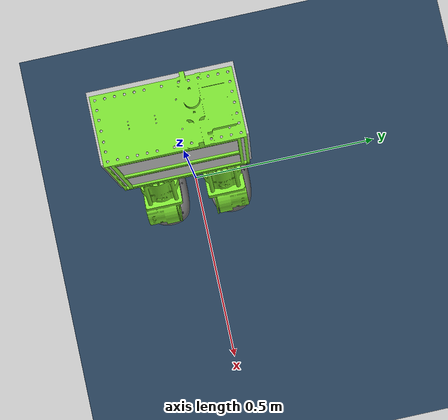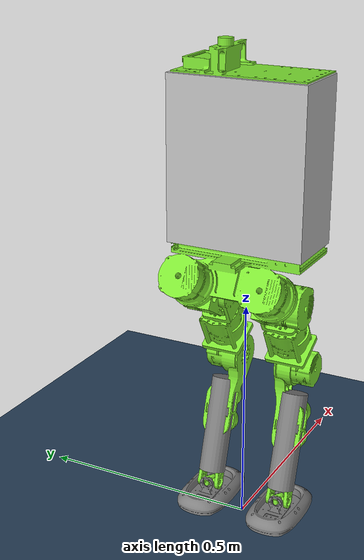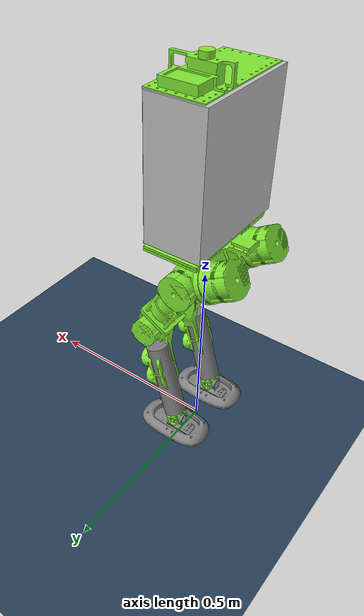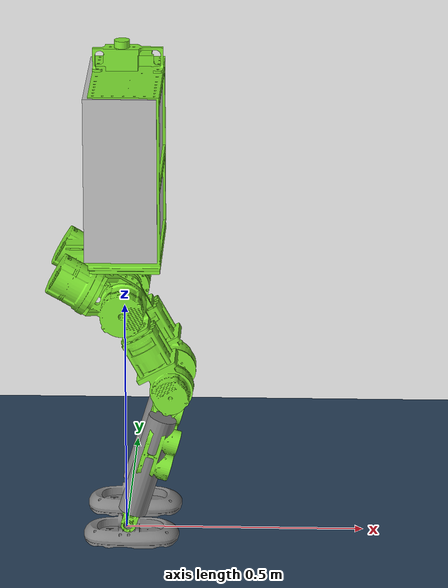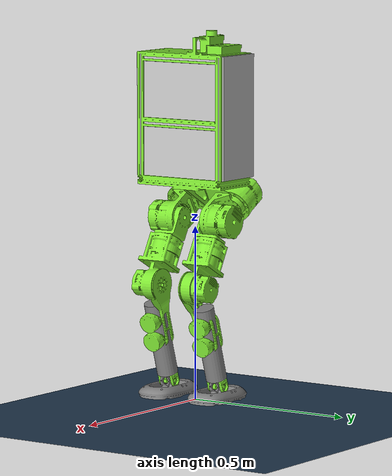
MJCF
<mujoco model="scene">
  <include file="p1.xml"/>

  <option iterations="50" timestep="0.001" solver="PGS" gravity="0 0 -9.81">
    <flag contact="enable" energy="enable"/>
  </option>

  <statistic center="0 0 0.1" extent="0.8"/>

  <visual>
    <headlight diffuse="0.6 0.6 0.6" ambient="0.3 0.3 0.3" specular="0 0 0"/>
    <rgba haze="0.15 0.25 0.35 1"/>
    <global azimuth="150" elevation="-20"/>
  </visual>

  <asset>
    <texture type="skybox" builtin="gradient" rgb1="0.3 0.5 0.7" rgb2="0 0 0" width="512" height="3072"/>
    <texture type="2d" name="groundplane" builtin="checker" mark="edge" rgb1="0.2 0.3 0.4" rgb2="0.1 0.2 0.3"
             markrgb="0.8 0.8 0.8" width="300" height="300"/>
    <material name="groundplane" texture="groundplane" texuniform="true" texrepeat="5 5" reflectance="0.2"/>
  </asset>

  <worldbody>
    <light pos="0 0 3" dir="0 0 -1" directional="true"/>

    <geom name="floor" size="0 0 1" pos="0 0 0" type="plane" material="groundplane" condim="3" conaffinity="15" friction="1.0 0.005 0.0001"/>
  </worldbody>
</mujoco>

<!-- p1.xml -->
<mujoco model="p1">
  <option iterations="50" timestep="0.001" solver="PGS" gravity="0 0 -9.81" />

  <!-- 路径对齐：假设 xml 在 mjcf 文件夹，meshes 在同级 p1 文件夹下 -->
  <compiler angle="radian" meshdir="../meshes" eulerseq="zyx" autolimits="true" />

  <default>
    <joint limited="true" damping="0.01" armature="0.01" frictionloss="0.01" />
    <!-- 默认几何体参与碰撞 (contype=1, conaffinity=15) -->
    <geom condim="4" contype="1" conaffinity="15" friction="0.9 0.2 0.2" solref="0.001 2" />
    <motor ctrllimited="true" />
    <equality solref="0.001 2" />
    <default class="visualgeom">
      <!-- 视觉专用类：不参与碰撞 -->
      <geom material="visualgeom" condim="1" contype="0" conaffinity="0" group="1" />
    </default>
  </default>

  <asset>
    <mesh name="pelvis_link" file="pelvis_link.STL" />
    <mesh name="hip_roll_l_link" file="hip_roll_l_link.STL" />
    <mesh name="hip_pitch_l_link" file="hip_pitch_l_link.STL" />
    <mesh name="hip_yaw_l_link" file="hip_yaw_l_link.STL" />
    <mesh name="knee_pitch_l_link" file="knee_pitch_l_link.STL" />
    <mesh name="ankle_pitch_l_link" file="ankle_pitch_l_link.STL" />
    <mesh name="ankle_roll_l_link" file="ankle_roll_l_link.STL" />
    <mesh name="hip_roll_r_link" file="hip_roll_r_link.STL" />
    <mesh name="hip_pitch_r_link" file="hip_pitch_r_link.STL" />
    <mesh name="hip_yaw_r_link" file="hip_yaw_r_link.STL" />
    <mesh name="knee_pitch_r_link" file="knee_pitch_r_link.STL" />
    <mesh name="ankle_pitch_r_link" file="ankle_pitch_r_link.STL" />
    <mesh name="ankle_roll_r_link" file="ankle_roll_r_link.STL" />
    <texture name="texplane" type="2d" builtin="checker" rgb1=".0 .0 .0" rgb2=".8 .8 .8" width="100" height="100" />
    <material name="matplane" reflectance="0." texture="texplane" texrepeat="1 1" texuniform="true" />
    <material name="visualgeom" rgba="0.5 0.9 0.2 1" />
  </asset>

  <worldbody>
    <light directional="true" diffuse="0.4 0.4 0.4" specular="0.1 0.1 0.1" pos="0 0 5.0" dir="0 0 -1" />
    <body name="base" pos="0 0 0.62">
      <freejoint name="root" />
      <site name="imu" size="0.01" pos="0 0 0" />
      <body name="pelvis_link">
        <inertial pos="-0.008727 0.000362 0.143329" mass="20.1932" diaginertia="0.4849 0.4146 0.1637" />
        <geom type="mesh" mesh="pelvis_link" class="visualgeom" />
        <geom type="box" size="0.075 0.15 0.175" pos="0 0 0.2" rgba="0.75 0.75 0.75 1" />

        <!-- 左腿 -->
        <body name="hip_roll_l_link" pos="-0.0608 0.09 -0.0628" quat="0.9659 0 0.2588 0">
          <joint name="hip_roll_l_joint" axis="1 0 0" range="-3.14 3.14" />
          <geom type="mesh" mesh="hip_roll_l_link" class="visualgeom" />
          <geom type="mesh" mesh="hip_roll_l_link" /> <!-- 物理碰撞体 -->
          <body name="hip_pitch_l_link" pos="0.071 -0.042 0" quat="0.8718 0 -0.4897 0">
            <joint name="hip_pitch_l_joint" axis="0 1 0" range="-3.14 3.14" />
            <geom type="mesh" mesh="hip_pitch_l_link" class="visualgeom" />
            <geom type="mesh" mesh="hip_pitch_l_link" />
            <body name="hip_yaw_l_link" pos="0 0.029 -0.065">
              <joint name="hip_yaw_l_joint" axis="0 0 1" range="-3.14 3.14" />
              <geom type="mesh" mesh="hip_yaw_l_link" class="visualgeom" />
              <geom type="mesh" mesh="hip_yaw_l_link" />
              <body name="knee_pitch_l_link" pos="0 -0.026 -0.143" quat="0.921 0 0.389 0">
                <joint name="knee_pitch_l_joint" axis="0 1 0" range="-3.14 3.14" />
                <geom type="mesh" mesh="knee_pitch_l_link" class="visualgeom" />
                <geom type="cylinder" size="0.03 0.11" pos="0 0.035 -0.17" />
                <body name="ankle_pitch_l_link" pos="0 0.0107 -0.3049" quat="0.988 0 -0.149 0">
                  <joint name="ankle_pitch_l_joint" axis="0 1 0" range="-3.14 3.14" />
                  <geom type="mesh" mesh="ankle_pitch_l_link" class="visualgeom" />
                  <geom type="mesh" mesh="ankle_pitch_l_link" />
                  <body name="ankle_roll_l_link" pos="0.0209 0.0244 0">
                    <joint name="ankle_roll_l_joint" axis="1 0 0" range="-3.14 3.14" />
                    <geom type="mesh" mesh="ankle_roll_l_link" />
                  </body>
                </body>
              </body>
            </body>
          </body>
        </body>

        <!-- 右腿 -->
        <body name="hip_roll_r_link" pos="-0.0617 -0.09 -0.0622" quat="0.9659 0 0.2588 0">
          <joint name="hip_roll_r_joint" axis="1 0 0" range="-3.14 3.14" />
          <geom type="mesh" mesh="hip_roll_r_link" class="visualgeom" />
          <geom type="mesh" mesh="hip_roll_r_link" />
          <body name="hip_pitch_r_link" pos="0.071 0.042 0" quat="0.8718 0 -0.4897 0">
            <joint name="hip_pitch_r_joint" axis="0 1 0" range="-3.14 3.14" />
            <geom type="mesh" mesh="hip_pitch_r_link" class="visualgeom" />
            <geom type="mesh" mesh="hip_pitch_r_link" />
            <body name="hip_yaw_r_link" pos="0 -0.029 -0.065">
              <joint name="hip_yaw_r_joint" axis="0 0 1" range="-3.14 3.14" />
              <geom type="mesh" mesh="hip_yaw_r_link" class="visualgeom" />
              <geom type="mesh" mesh="hip_yaw_r_link" />
              <body name="knee_pitch_r_link" pos="0 0.026 -0.143" quat="0.921 0 0.389 0">
                <joint name="knee_pitch_r_joint" axis="0 1 0" range="-3.14 3.14" />
                <geom type="mesh" mesh="knee_pitch_r_link" class="visualgeom" />
                <geom type="cylinder" size="0.03 0.11" pos="0 -0.035 -0.17" />
                <body name="ankle_pitch_r_link" pos="0 -0.0107 -0.3049" quat="0.988 0 -0.149 0">
                  <joint name="ankle_pitch_r_joint" axis="0 1 0" range="-3.14 3.14" />
                  <geom type="mesh" mesh="ankle_pitch_r_link" class="visualgeom" />
                  <geom type="mesh" mesh="ankle_pitch_r_link" />
                  <body name="ankle_roll_r_link" pos="0.0209 -0.0244 0">
                    <joint name="ankle_roll_r_joint" axis="1 0 0" range="-3.14 3.14" />
                    <geom type="mesh" mesh="ankle_roll_r_link" />
                  </body>
                </body>
              </body>
            </body>
          </body>
        </body>
      </body>
    </body>
  </worldbody>

  <actuator>
    <motor name="hip_roll_l" joint="hip_roll_l_joint" gear="1" ctrlrange="-120 120" />
    <motor name="hip_pitch_l" joint="hip_pitch_l_joint" gear="1" ctrlrange="-120 120" />
    <motor name="hip_yaw_l" joint="hip_yaw_l_joint" gear="1" ctrlrange="-60 60" />
    <motor name="knee_pitch_l" joint="knee_pitch_l_joint" gear="1" ctrlrange="-60 60" />
    <motor name="ankle_pitch_l" joint="ankle_pitch_l_joint" gear="1" ctrlrange="-34 34" />
    <motor name="ankle_roll_l" joint="ankle_roll_l_joint" gear="1" ctrlrange="-34 34" />
    <motor name="hip_roll_r" joint="hip_roll_r_joint" gear="1" ctrlrange="-120 120" />
    <motor name="hip_pitch_r" joint="hip_pitch_r_joint" gear="1" ctrlrange="-120 120" />
    <motor name="hip_yaw_r" joint="hip_yaw_r_joint" gear="1" ctrlrange="-60 60" />
    <motor name="knee_pitch_r" joint="knee_pitch_r_joint" gear="1" ctrlrange="-60 60" />
    <motor name="ankle_pitch_r" joint="ankle_pitch_r_joint" gear="1" ctrlrange="-34 34" />
    <motor name="ankle_roll_r" joint="ankle_roll_r_joint" gear="1" ctrlrange="-34 34" />
  </actuator>

  <sensor>
    <framequat name="orientation" objtype="site" objname="imu" noise="0.001" />
    <gyro name="angular-velocity" site="imu" noise="0.005" cutoff="34.9" />
    <accelerometer name="linear-acceleration" site="imu" noise="0.005" />
    <velocimeter name="linear-velocity" site="imu" noise="0.001" />
  </sensor>
</mujoco>
